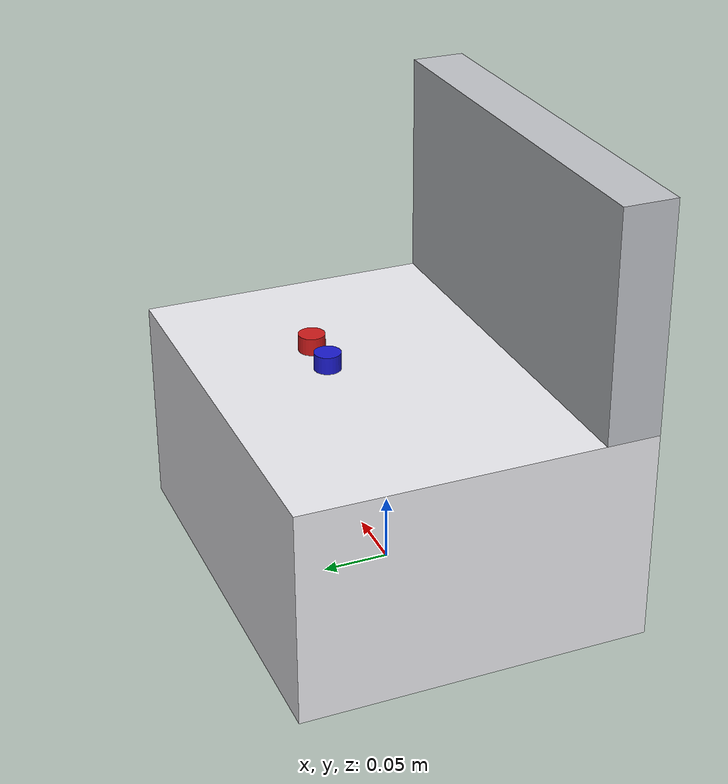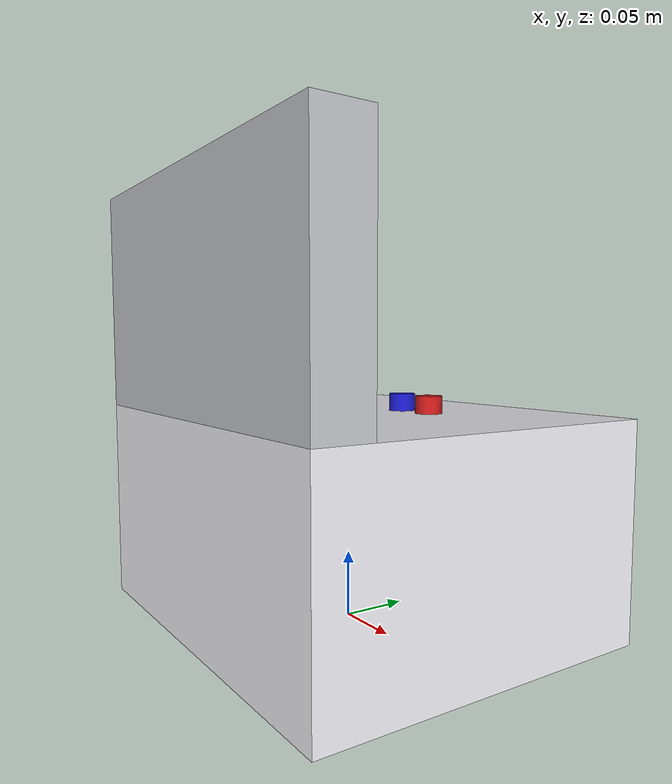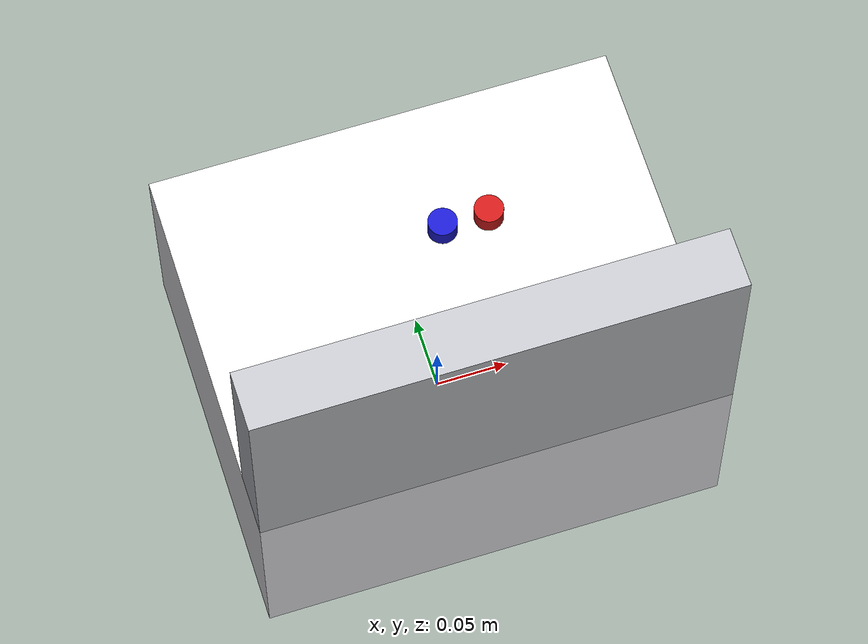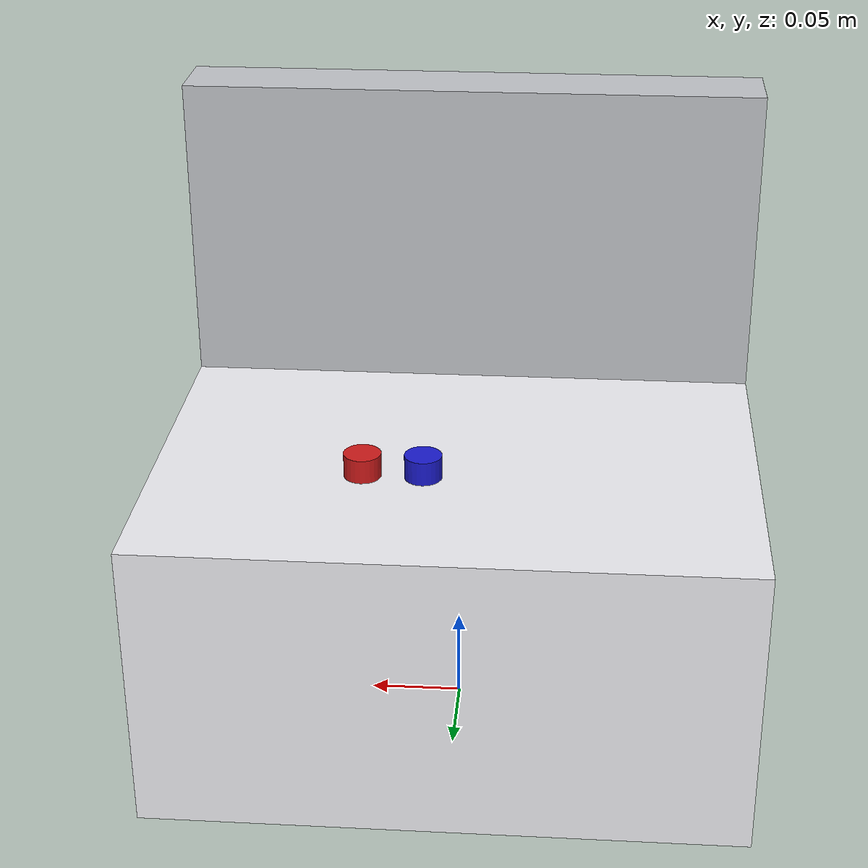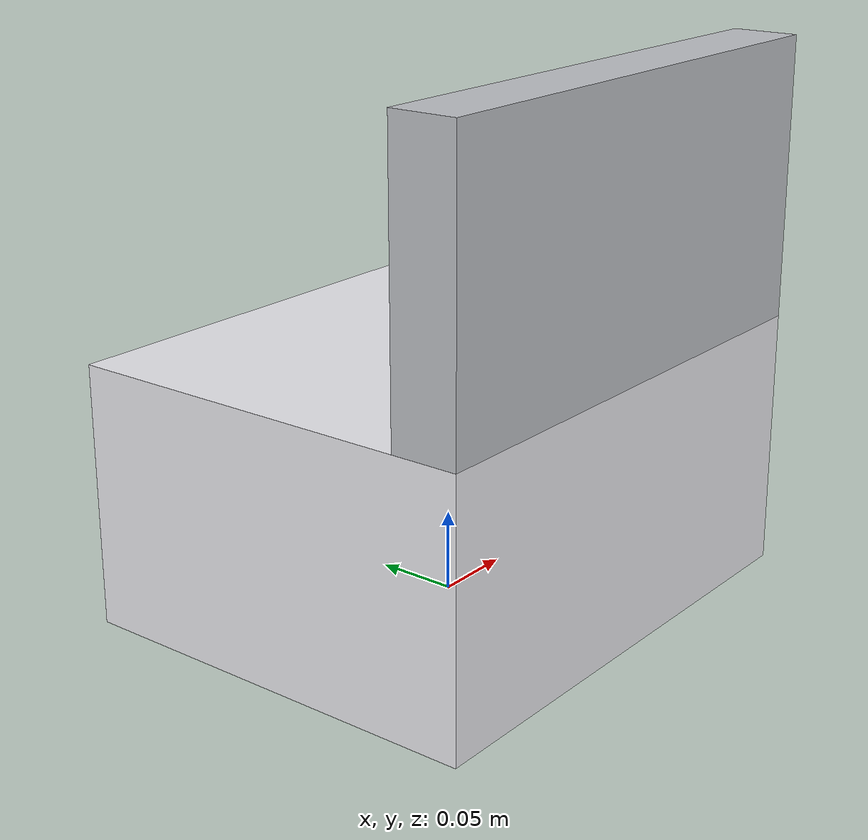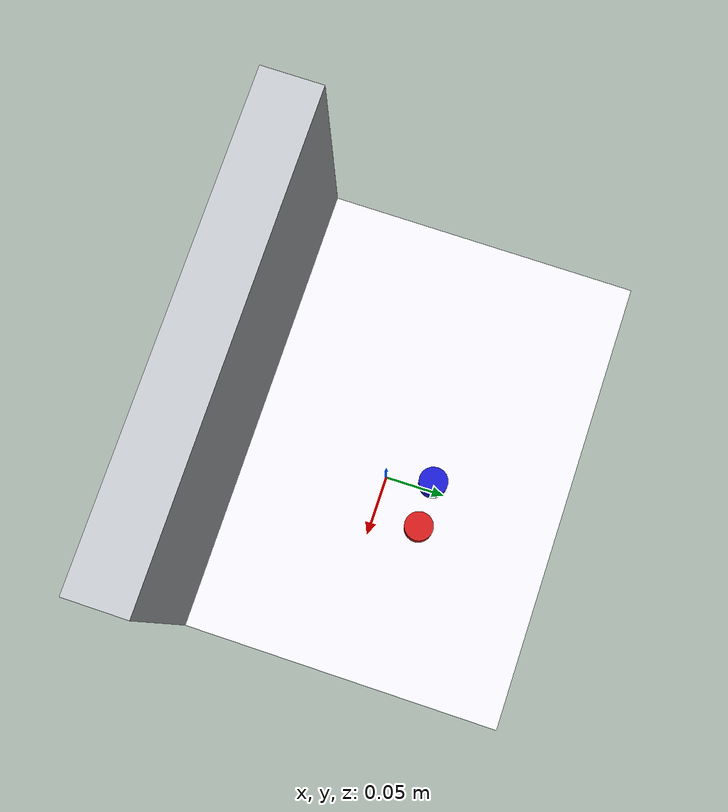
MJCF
<?xml version="1.0" encoding="utf-8"?>
<mujoco model="real_lab_western_university_pcr">
  <compiler angle="radian" autolimits="true"/>
  <default>
    <default class="body"><geom contype="1" conaffinity="1"/></default>
  </default>
  <worldbody>
    <body name="base">
      <geom type="box" size="0.16 0.13 0.08" pos="0 0 0.08" rgba="0.92 0.92 0.94 1" class="body"/>
      <geom type="box" size="0.048 0.006500000000000001 0.02" pos="-0.08 -0.117 0.12" rgba="0.05 0.55 0.15 1" class="body"/>
      <geom type="cylinder" size="0.01 0.008" pos="0.048 0.039 0.165" rgba="0.8 0.1 0.1 1" class="body"/>
      <geom type="cylinder" size="0.01 0.008" pos="0.016 0.039 0.165" rgba="0.1 0.1 0.8 1" class="body"/>
      <body name="lid" pos="0 -0.11 0.16">
        <joint name="lid_joint" type="hinge" axis="0 1 0" range="0 1.4" damping="0.8" frictionloss="0.3"/>
  <geom type="box" size="0.16 0.02 0.085" pos="0 0 0.085" rgba="0.75 0.76 0.78 1" class="body"/>
      </body>
    </body>
  </worldbody>
</mujoco>
